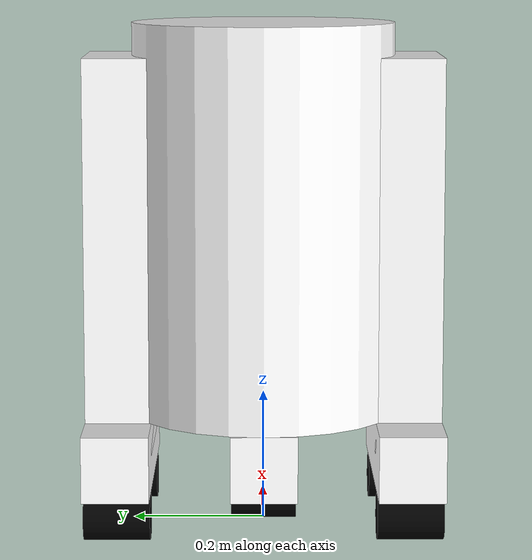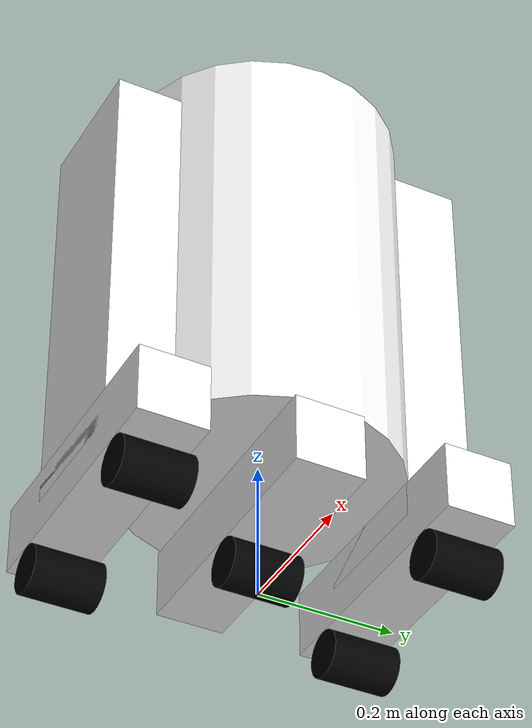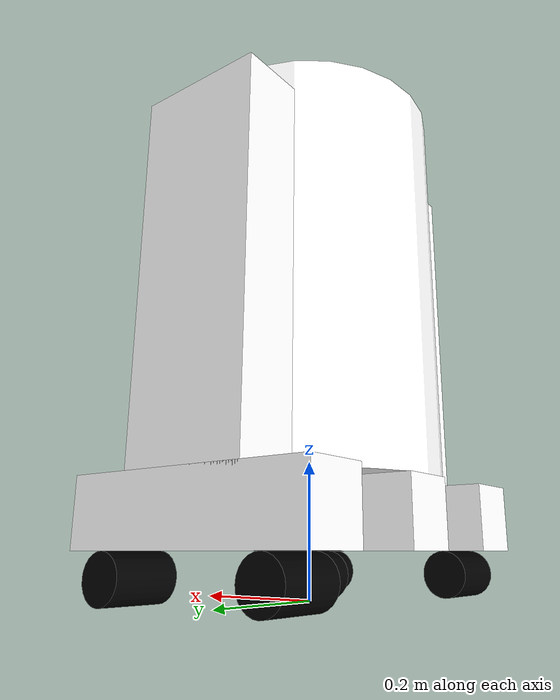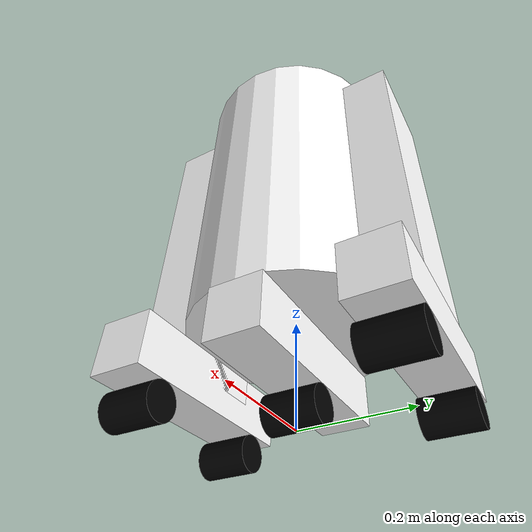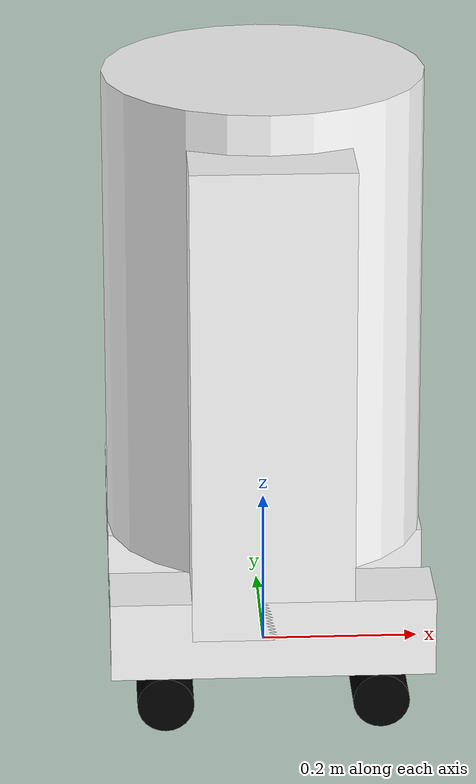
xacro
<?xml version="1.0"?>
<robot name="macroed" xmlns:xacro="http://ros.org/wiki/xacro">

  <xacro:property name="width" value="0.2" />
  <xacro:property name="leglen" value="0.6" />
  <xacro:property name="polelen" value="0.2" />
  <xacro:property name="bodylen" value="0.6" />
  <xacro:property name="baselen" value="0.4" />
  <xacro:property name="wheeldiam" value="0.07" />
  <xacro:property name="pi" value="3.1415" />
  <xacro:property name="legwidth" value="0.1" />
  <material name="blue">
    <color rgba="0 0 0.8 1"/>
  </material>

  <material name="black">
    <color rgba="0 0 0 1"/>
  </material>

  <material name="white">
    <color rgba="1 1 1 1"/>
  </material>

  <xacro:macro name="default_inertial" params="mass">
    <inertial>
      <mass value="${mass}" />
      <inertia ixx="1.0" ixy="0.0" ixz="0.0" iyy="1.0" iyz="0.0" izz="1.0" />
    </inertial>
  </xacro:macro>

  <link name="base_link">
    <visual>
      <geometry>
        <cylinder radius="${width}" length="${bodylen}"/>
      </geometry>
      <material name="white"/>
    </visual>
    <collision>
      <geometry>
        <cylinder radius="${width}" length="${bodylen}"/>
      </geometry>
    </collision>
    <xacro:default_inertial mass="10"/>
  </link>

  <xacro:macro name="wheel" params="prefix suffix reflect">

    <link name="${prefix}_${suffix}_wheel">
      <visual>
        <origin xyz="0 0 0" rpy="${pi/2} 0 0" />
        <geometry>
          <cylinder radius="${wheeldiam/2}" length="${legwidth}"/>
        </geometry>
        <material name="black"/>
      </visual>
      <collision>
        <origin xyz="0 0 0" rpy="${pi/2} 0 0" />
        <geometry>
          <cylinder radius="${wheeldiam/2}" length="${legwidth}"/>
        </geometry>
      </collision>
      <xacro:default_inertial mass="1"/>
    </link>
    <joint name="${prefix}_${suffix}_wheel_joint" type="continuous">
      <axis xyz="0 1 0" rpy="0 0 0" />
      <parent link="${prefix}_base"/>
      <child link="${prefix}_${suffix}_wheel"/>
      <origin xyz="${baselen*reflect/3} 0 -${wheeldiam/2+.05}" rpy="0 0 0"/>
    </joint>

  </xacro:macro>

  <xacro:macro name="leg" params="prefix reflect">
    <link name="${prefix}_leg">
      <visual>
        <geometry>
          <box size="${leglen} ${legwidth} 0.2"/>
        </geometry>
        <origin xyz="0 0 -${leglen/2}" rpy="0 ${pi/2} 0"/>
        <material name="white"/>
      </visual>
      <collision>
        <geometry>
          <box size="${leglen} ${legwidth} 0.2"/>
        </geometry>
        <origin xyz="0 0 -${leglen/2}" rpy="0 ${pi/2} 0"/>
      </collision>
      <xacro:default_inertial mass="10"/>
    </link>

    <joint name="base_to_${prefix}_leg" type="fixed">
      <parent link="base_link"/>
      <child link="${prefix}_leg"/>
      <origin xyz="0 ${reflect*(width+.02)} 0.25" />
    </joint>

    <link name="${prefix}_base">
      <visual>
        <geometry>
          <box size="${baselen} ${legwidth} ${legwidth}"/>
        </geometry>
        <material name="white"/>
      </visual>
      <collision>
        <geometry>
          <box size="${baselen} ${legwidth} ${legwidth}"/>
        </geometry>
      </collision>
      <xacro:default_inertial mass="10"/>
    </link>

    <joint name="${prefix}_base_joint" type="fixed">
      <parent link="${prefix}_leg"/>
      <child link="${prefix}_base"/>
      <origin xyz="0 0 ${-leglen}" />
    </joint>
    <xacro:wheel prefix="${prefix}" suffix="front" reflect="1"/>
    <xacro:wheel prefix="${prefix}" suffix="back" reflect="-1"/>
  </xacro:macro>
  <xacro:leg prefix="right" reflect="-1" />
  <xacro:leg prefix="left" reflect="1" />

 <link name="base_footprint"/>

  <link name="extra">
      <visual>
        <geometry>
          <box size="${baselen} ${legwidth} ${legwidth}"/>
        </geometry>
        <material name="white"/>
      </visual>
      <collision>
        <geometry>
          <box size="${baselen} ${legwidth} ${legwidth}"/>
        </geometry>
      </collision>
      <xacro:default_inertial mass="10"/>
    </link>

<joint name="base_to_extra" type="fixed">
    <child link="extra"/>
    <parent link = "base_link"/>
    <origin xyz="0 0 -${bodylen/2+ legwidth/2}"/>
 </joint>

    <link name="extra_wheel">
      <visual>
        <origin xyz="0 0 0" rpy="${pi/2} 0 0" />
        <geometry>
          <cylinder radius="${wheeldiam/2}" length="${legwidth}"/>
        </geometry>
        <material name="black"/>
      </visual>
      <collision>
        <origin xyz="0 0 0" rpy="${pi/2} 0 0" />
        <geometry>
          <cylinder radius="${wheeldiam/2}" length="${legwidth}"/>
        </geometry>
      </collision>
      <xacro:default_inertial mass="1"/>
    </link>

   <joint name="extra_wheel_joint" type="continuous">
      <axis xyz="0 1 0" rpy="0 0 0" />
      <parent link="extra"/>
      <child link="extra_wheel"/>
      <origin xyz="0 0 -${wheeldiam/2+.05}" rpy="0 0 0"/>
    </joint>

 <joint name="base_to_footprint" type="fixed">
    <child link="base_link"/>
    <parent link = "base_footprint"/>
    <origin xyz="0 0 ${bodylen/2 + legwidth + wheeldiam}"/>
 </joint>

</robot>
